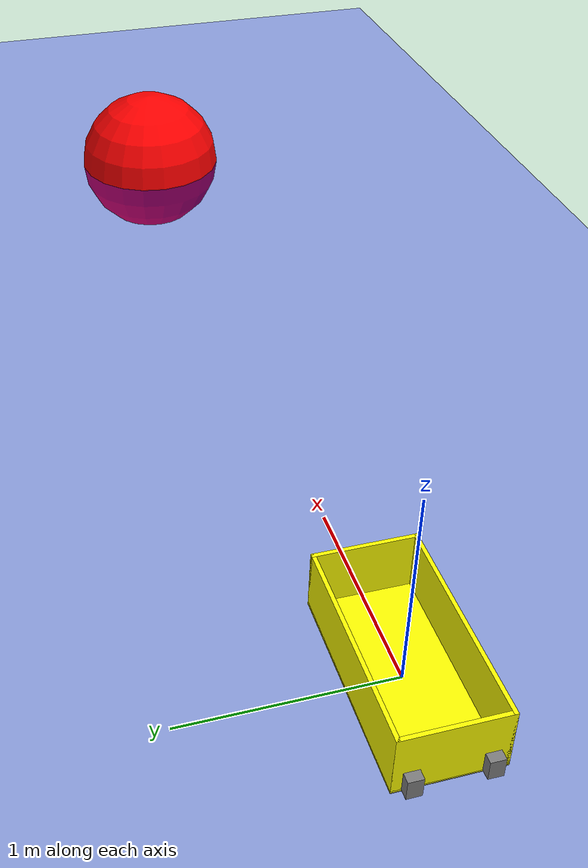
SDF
<?xml version="1.0"?>
<sdf version="1.7">

    <world name="tf_world">
        <scene>
            <ambient>0.0 1.0 1.0</ambient>
            <background>0 0.7 0.8</background>
        </scene>

        <light type="directional" name="sun">
            <cast_shadows>true</cast_shadows>
            <pose>0 0 10 0 0 0</pose>
            <diffuse>1 1 1 1</diffuse>
            <specular>0.5 0.5 0.5 1</specular>
            <attenuation>
                <range>1000</range>
                <constant>0.9</constant>
                <linear>0.01</linear>
                <quadratic>0.001</quadratic>
            </attenuation>
            <direction>-0.5 0.1 -0.9</direction>
        </light>

        <physics name="1ms" type="ode">
            <max_step_size>0.001</max_step_size>
            <real_time_factor>1.0</real_time_factor>
        </physics>
        <plugin filename="ignition-gazebo-physics-system" name="ignition::gazebo::systems::Physics">
        </plugin>
        <plugin filename="ignition-gazebo-user-commands-system" name="ignition::gazebo::systems::UserCommands">
        </plugin>
        <plugin filename="ignition-gazebo-scene-broadcaster-system" name="ignition::gazebo::systems::SceneBroadcaster">
        </plugin>
        <plugin filename="ignition-gazebo-buoyancy-system" name="ignition::gazebo::systems::Buoyancy">
            <graded_buoyancy>
                <default_density>1000</default_density>
                <density_change>
                    <above_depth>0</above_depth>
                    <density>1</density>
                </density_change>
            </graded_buoyancy>
        </plugin>
        <!-- 센서 플러그인 -->
        <plugin filename="ignition-gazebo-sensors-system" name="ignition::gazebo::systems::Sensors">
        </plugin>

        <model name="water_plane">
            <static>true</static>
            <link name="link">
                <visual name="water_plane">
                    <geometry>
                        <plane>
                            <size>100 100</size>
                            <normal>0 0 1</normal>
                        </plane>
                    </geometry>
                    <material>
                        <ambient>0 0 1 0.7</ambient>
                        <diffuse>0 0 1 0.7</diffuse>
                        <specular>0 0 1 0.7</specular>
                    </material>
                </visual>
            </link>
        </model>

        <model name="my_boat">
            <!-- 바닥면 -->
            <link name="base_link">
                <visual name="link_bottom">
                    <geometry>
                        <box>
                            <size>1.0 0.5 0.02</size>
                        </box>
                    </geometry>
                    <pose>0 0 0 0 0 0</pose>
                    <!-- 중심을 기준으로 위로 두께 절반만큼 올림 -->
                    <material>
                        <ambient>1 1 0 1</ambient>
                        <diffuse>1 1 0 1</diffuse>
                        <specular>1 1 0 1</specular>
                    </material>
                </visual>
                <collision name="link_bottom">
                    <geometry>
                        <box>
                            <size>1.0 0.5 0.02</size>
                        </box>
                    </geometry>
                    <pose>0 0 0.01 0 0 0</pose>
                </collision>
                <inertial>
                    <mass>5</mass>
                    <!-- inertia : calculated by "omni calculator(web page), cuboid?"-->
                    <inertia>
                        <ixx>0.10433</ixx>
                        <ixy>0</ixy>
                        <ixz>0</ixz>
                        <iyy>0.4168</iyy>
                        <iyz>0</iyz>
                        <izz>0.5208</izz>
                    </inertia>
                </inertial>
            </link>

            <!-- 왼쪽 벽 -->
            <link name="link_left_wall">
                <visual name="link_left_wall">
                    <geometry>
                        <box>
                            <size>1.0 0.02 0.3</size>
                        </box>
                    </geometry>
                    <pose>0 0.24 0.15 0 0 0</pose>
                    <material>
                        <ambient>1 1 0 1</ambient>
                        <diffuse>1 1 0 1</diffuse>
                        <specular>1 1 0 1</specular>
                    </material>
                </visual>
                <collision name="link_left_wall">
                    <geometry>
                        <box>
                            <size>1.0 0.02 0.3</size>
                        </box>
                    </geometry>
                    <pose>0 0.24 0.15 0 0 0</pose>
                </collision>
                <inertial>
                    <mass>3</mass>
                    <!-- inertia : calculated by "omni calculator(web page), cuboid?"-->
                    <inertia>
                        <ixx>0.0226</ixx>
                        <ixy>0</ixy>
                        <ixz>0</ixz>
                        <iyy>0.2725</iyy>
                        <iyz>0</iyz>
                        <izz>0.2501</izz>
                    </inertia>
                </inertial>
            </link>

            <!-- 오른쪽 벽 -->
            <link name="link_right_wall">
                <visual name="link_right_wall">
                    <geometry>
                        <box>
                            <size>1.0 0.02 0.3</size>
                        </box>
                    </geometry>
                    <pose>0 -0.24 0.15 0 0 0</pose>
                    <material>
                        <ambient>1 1 0 1</ambient>
                        <diffuse>1 1 0 1</diffuse>
                        <specular>1 1 0 1</specular>
                    </material>
                </visual>
                <collision name="link_right_wall">
                    <geometry>
                        <box>
                            <size>1.0 0.02 0.3</size>
                        </box>
                    </geometry>
                    <pose>0 -0.24 0.15 0 0 0</pose>
                </collision>
                <inertial>
                    <mass>3</mass>
                    <!-- inertia : calculated by "omni calculator(web page), cuboid?"-->
                    <inertia>
                        <ixx>0.0226</ixx>
                        <ixy>0</ixy>
                        <ixz>0</ixz>
                        <iyy>0.2725</iyy>
                        <iyz>0</iyz>
                        <izz>0.2501</izz>
                    </inertia>
                </inertial>
            </link>

            <!-- 앞쪽 벽 -->
            <link name="link_front_wall">
                <visual name="link_front_wall">
                    <geometry>
                        <box>
                            <size>0.02 0.5 0.3</size>
                        </box>
                    </geometry>
                    <pose>0.49 0 0.15 0 0 0</pose>
                    <material>
                        <ambient>1 1 0 1</ambient>
                        <diffuse>1 1 0 1</diffuse>
                        <specular>1 1 0 1</specular>
                    </material>
                </visual>
                <collision name="link_front_wall">
                    <geometry>
                        <box>
                            <size>0.02 0.5 0.3</size>
                        </box>
                    </geometry>
                    <pose>0.49 0 0.15 0 0 0</pose>
                </collision>
                <inertial>
                    <mass>2</mass>
                    <!-- inertia : calculated by "omni calculator(web page), cuboid?"-->
                    <inertia>
                        <ixx>0.05667</ixx>
                        <ixy>0</ixy>
                        <ixz>0</ixz>
                        <iyy>0.015067</iyy>
                        <iyz>0</iyz>
                        <izz>0.04173</izz>
                    </inertia>
                </inertial>
            </link>

            <!-- 뒤쪽 벽 -->
            <link name="link_back_wall">
                <visual name="link_back_wall">
                    <geometry>
                        <box>
                            <size>0.02 0.5 0.3</size>
                        </box>
                    </geometry>
                    <pose>-0.49 0 0.15 0 0 0</pose>
                    <material>
                        <ambient>1 1 0 1</ambient>
                        <diffuse>1 1 0 1</diffuse>
                        <specular>1 1 0 1</specular>
                    </material>
                </visual>
                <collision name="link_back_wall">
                    <geometry>
                        <box>
                            <size>0.02 0.5 0.3</size>
                        </box>
                    </geometry>
                    <pose>-0.49 0 0.15 0 0 0</pose>
                </collision>
                <inertial>
                    <mass>2</mass>
                    <!-- inertia : calculated by "omni calculator(web page), cuboid?"-->
                    <inertia>
                        <ixx>0.05667</ixx>
                        <ixy>0</ixy>
                        <ixz>0</ixz>
                        <iyy>0.015067</iyy>
                        <iyz>0</iyz>
                        <izz>0.04173</izz>
                    </inertia>
                </inertial>
            </link>

            <!-- 고정 조인트로 연결 -->
            <joint name="left_joint" type="fixed">
                <parent>base_link</parent>
                <child>link_left_wall</child>
            </joint>

            <joint name="right_joint" type="fixed">
                <parent>base_link</parent>
                <child>link_right_wall</child>
            </joint>

            <joint name="front_joint" type="fixed">
                <parent>base_link</parent>
                <child>link_front_wall</child>
            </joint>

            <joint name="back_joint" type="fixed">
                <parent>base_link</parent>
                <child>link_back_wall</child>
            </joint>

            <!-- Camera 정의 -->
            <joint name="joint_camera" type="fixed">
                <pose>0 0 0 0 0 0</pose>
                <parent>base_link</parent>
                <child>camera_link</child>
            </joint>

            <link name="camera_link">
                <pose>0.52 0 0.25 0 0 0</pose>
                <sensor type="camera" name="my_sensor">
                    <pose>0 0 0 0 0 0</pose>
                    <camera>
                        <horizontal_fov>1.0</horizontal_fov>
                        <image>
                            <width>320</width>
                            <height>240</height>
                        </image>
                        <clip>
                            <near>0.1</near>
                            <far>100</far>
                        </clip>
                    </camera>
                    <topic>image</topic>
                    <always_on>1</always_on>
                    <update_rate>30</update_rate>
                    <visualize>true</visualize>
                </sensor>
            </link>

            <!-- Thruster 정의 -->
            <joint name="joint_propeller1" type="revolute">
                <pose>0 0 0 0 0 0</pose>
                <parent>base_link</parent>
                <child>thruster1</child>
                <axis>
                    <xyz>0 0 1</xyz>
                </axis>
            </joint>

            <link name="thruster1">
                <pose>-0.52 0.17 0.05 0 1.57 0</pose>
                <collision name="collision">
                    <geometry>
                        <box>
                            <size>0.1 0.07 0.05</size>
                        </box>
                    </geometry>
                </collision>
                <visual name="visual">
                    <geometry>
                        <box>
                            <size>0.1 0.07 0.05</size>
                        </box>
                    </geometry>
                    <material>
                        <ambient>0.5 0.5 0.5 1</ambient>
                        <diffuse>0.5 0.5 0.5 1</diffuse>
                        <specular>0.5 0.5 0.5 1</specular>
                    </material>
                </visual>
                <inertial>
                    <mass>0.525</mass>
                    <inertia>
                        <ixx>0.00032375</ixx>
                        <ixy>0</ixy>
                        <ixz>0</ixz>
                        <iyy>0.0005469</iyy>
                        <iyz>0</iyz>
                        <izz>0.0006519</izz>
                    </inertia>
                </inertial>
            </link>

            <joint name="joint_propeller2" type="revolute">
                <pose>0 0 0 0 0 0</pose>
                <parent>base_link</parent>
                <child>thruster2</child>
                <axis>
                    <xyz>0 0 1</xyz>
                </axis>
            </joint>

            <link name="thruster2">
                <pose>-0.52 -0.17 0.05 0 1.57 0</pose>
                <collision name="collision">
                    <geometry>
                        <box>
                            <size>0.1 0.07 0.05</size>
                        </box>
                    </geometry>
                </collision>
                <visual name="visual">
                    <geometry>
                        <box>
                            <size>0.1 0.07 0.05</size>
                        </box>
                    </geometry>
                    <material>
                        <ambient>0.5 0.5 0.5 1</ambient>
                        <diffuse>0.5 0.5 0.5 1</diffuse>
                        <specular>0.5 0.5 0.5 1</specular>
                    </material>
                </visual>
                <inertial>
                    <mass>0.525</mass>
                    <inertia>
                        <ixx>0.00032375</ixx>
                        <ixy>0</ixy>
                        <ixz>0</ixz>
                        <iyy>0.0005469</iyy>
                        <iyz>0</iyz>
                        <izz>0.0006519</izz>
                    </inertia>
                </inertial>
            </link>

            <!-- Hydrodynamics plugin -->
            <plugin filename="ignition-gazebo-hydrodynamics-system" name="ignition::gazebo::systems::Hydrodynamics">
                <link_name>base_link</link_name>
                <xDotU>-0.04876161</xDotU>
                <yDotV>-1.26324739</yDotV>
                <zDotW>-1.26324739</zDotW>
                <kDotP>0</kDotP>
                <mDotQ>-0.3346</mDotQ>
                <nDotR>-0.3346</nDotR>
                <xUabsU>-0.62282</xUabsU>
                <xU>-5</xU>
                <yVabsV>-60.127</yVabsV>
                <yV>-5</yV>
                <zWabsW>-6.0127</zWabsW>
                <zW>-100</zW>
                <kPabsP>-0.001916</kPabsP>
                <kP>-1</kP>
                <mQabsQ>-6.32698957</mQabsQ>
                <mQ>-1</mQ>
                <nRabsR>-6.32698957</nRabsR>
                <nR>-1</nR>
            </plugin>
            <!-- Thruster plugin -->
            <plugin filename="ignition-gazebo-thruster-system" name="ignition::gazebo::systems::Thruster">
                <joint_name>joint_propeller1</joint_name>
                <namespace>my_boat</namespace>
                <topic>thrust1</topic>
                <thrust_coefficient>0.001</thrust_coefficient>
                <fluid_density>1000</fluid_density>
                <propeller_diameter>0.4</propeller_diameter>
            </plugin>
            <plugin filename="ignition-gazebo-thruster-system" name="ignition::gazebo::systems::Thruster">
                <joint_name>joint_propeller2</joint_name>
                <namespace>my_boat</namespace>
                <topic>thrust2</topic>
                <thrust_coefficient>0.001</thrust_coefficient>
                <fluid_density>1000</fluid_density>
                <propeller_diameter>0.4</propeller_diameter>
            </plugin>
        </model>

        <!-- Obstacle -->
        <model name="obstacle">
            <static>true</static>
            <pose>5 0 0 0 0 0</pose>
            <link name="base_link">
                <visual name="obstacle">
                    <geometry>
                        <sphere>
                            <radius>0.5</radius>
                        </sphere>
                    </geometry>
                    <material>
                        <ambient>1 0 0 1</ambient>
                        <diffuse>1 0 0 1</diffuse>
                        <specular>1 0 0 1</specular>
                    </material>
                </visual>
            </link>
        </model>

    </world>

</sdf>
